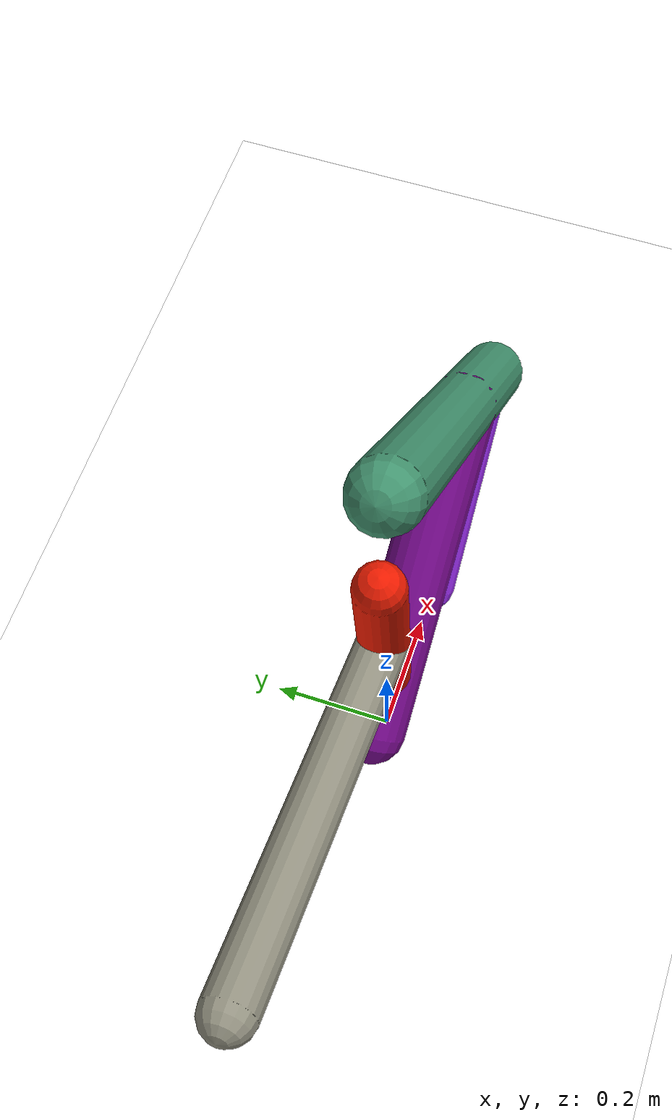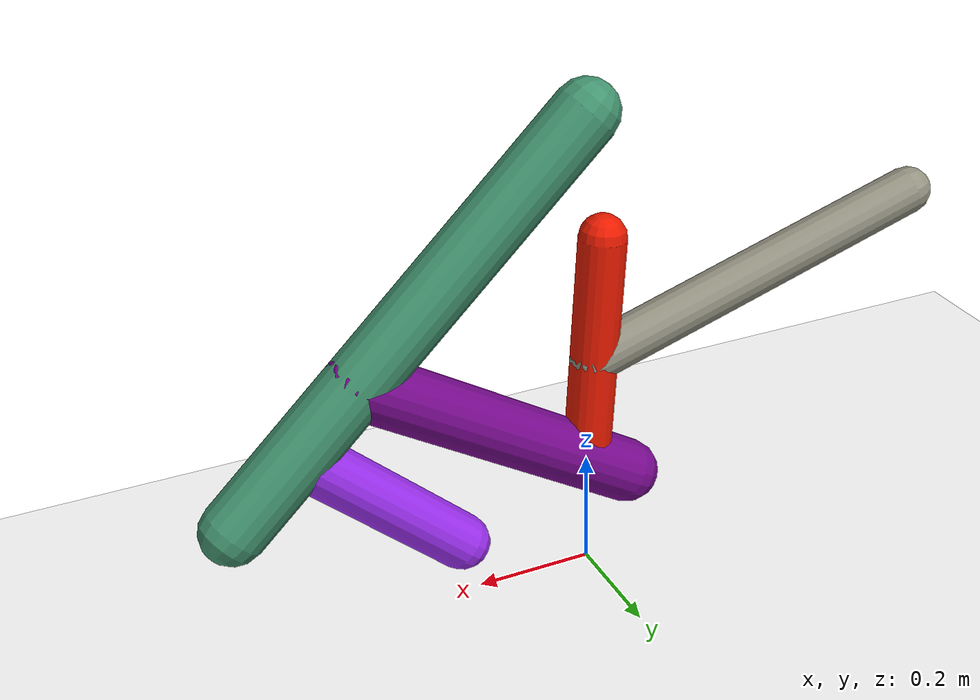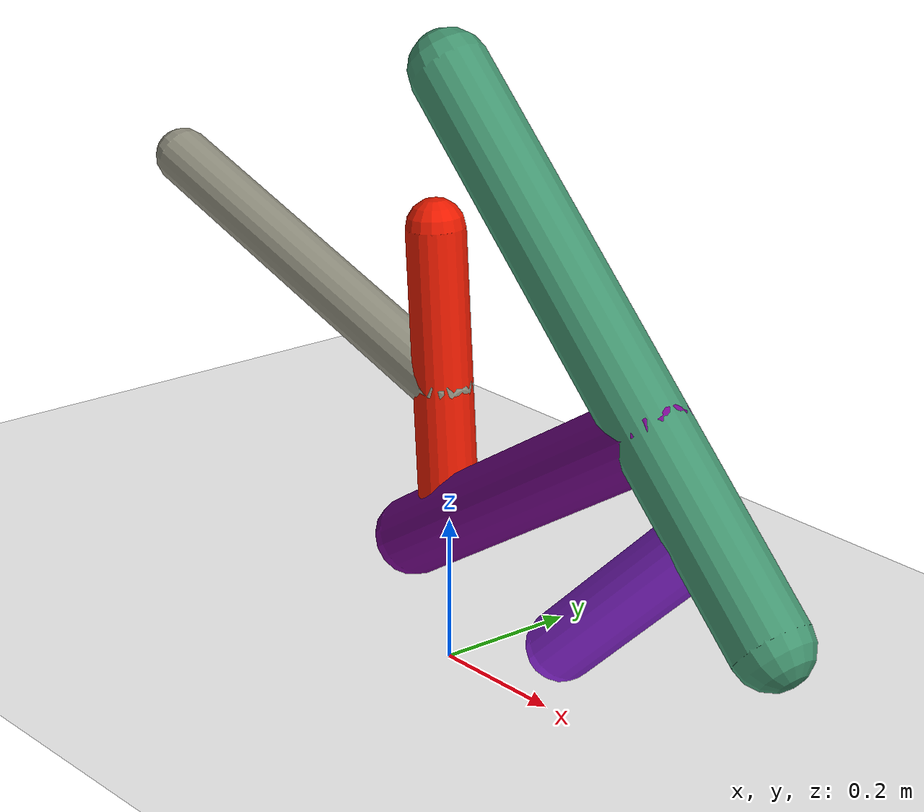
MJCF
<mujoco model="morphology">
  <option timestep="0.01"/>
  <default>
    <default class="/"/>
    <default class="0/"/>
    <default class="0/1/"/>
    <default class="0/2/"/>
    <default class="0/2/3/"/>
    <default class="0/2/3/4/"/>
  </default>
  <asset>
    <texture name="texplane" type="2d" builtin="checker" rgb1="0.10000000000000001 0.20000000000000001 0.29999999999999999" rgb2="0.20000000000000001 0.29999999999999999 0.40000000000000002" width="300" height="300"/>
    <material name="MatPlane" class="/" texture="texplane" texrepeat="20 20" specular="1" shininess="1" reflectance="0.5"/>
  </asset>
  <worldbody>
    <light name="//unnamed_light_0" class="/" directional="true" pos="0 0 1.5" dir="0 0 -1.3" cutoff="100" exponent="1" diffuse="1 1 1" specular="0.10000000000000001 0.10000000000000001 0.10000000000000001"/>
    <geom name="ground" class="/" type="plane" size="15 15 0.5" material="MatPlane" rgba="1 1 1 1"/>
    <site name="body" class="/" size="9.9999999999999995e-07 9.9999999999999995e-07 9.9999999999999995e-07" pos="0 0 0.81631270647048948"/>
    <body pos="0 0 0.81631270647048948" name="0/">
      <joint name="0/rootx/" class="/" type="slide" axis="1 0 0" limited="false" stiffness="0" armature="0" damping="0"/>
      <joint name="0/rootz/" class="/" type="slide" axis="0 0 1" limited="false" stiffness="0" armature="0" damping="0"/>
      <joint name="0/rooty/" class="/" type="hinge" axis="0 1 0" limited="false" stiffness="0" armature="0" damping="0"/>
      <geom name="0/geom" class="0/" type="capsule" contype="1" conaffinity="1" condim="3" size="0.054333583475095405" rgba="0.25850863879701069 0.57849214353567113 0.43517341792433606 1" friction="0.59999999999999998 0.10000000000000001 0.10000000000000001" fromto="0 0 0 0.6061226123117025 0 -0.58173029783024688"/>
      <site name="0/end0" class="0/" size="0.0050000000000000001" pos="0.6061226123117025 0 -0.58173029783024688"/>
      <site name="0/attach1" class="0/" size="9.9999999999999995e-07 9.9999999999999995e-07 9.9999999999999995e-07" pos="0.49404073992059255 0 -0.47415895882545511"/>
      <body pos="0.49404073992059255 0 -0.47415895882545511" name="0/1/">
        <joint name="0/1/joint/" class="0/" type="hinge" axis="0 1 0" limited="true" range="-49.129808682186365 49.129808682186365"/>
        <geom name="0/1/geom" class="0/1/" type="capsule" contype="1" conaffinity="1" condim="3" size="0.047263565412555934" rgba="0.62558750566505184 0.18692771071461689 0.96240394462488721 1" friction="0.59999999999999998 0.10000000000000001 0.10000000000000001" fromto="0 0 0 -0.26319285239741902 0 -0.24215375611822121"/>
        <site name="0/1/end1" class="0/1/" size="0.0050000000000000001" pos="-0.26319285239741902 0 -0.24215375611822121"/>
      </body>
      <site name="0/attach2" class="0/" size="9.9999999999999995e-07 9.9999999999999995e-07 9.9999999999999995e-07" pos="0.39058970414257199 0 -0.37487112393595728"/>
      <body pos="0.39058970414257199 0 -0.37487112393595728" name="0/2/">
        <geom name="0/2/geom" class="0/2/" type="capsule" contype="1" conaffinity="1" condim="3" size="0.054593920167780613" rgba="0.46996910158203009 0.037176516672498772 0.56251986186842307 1" friction="0.59999999999999998 0.10000000000000001 0.10000000000000001" fromto="0 0 0 -0.46661335008767341 0 -0.2879083503975392"/>
        <site name="0/2/end2" class="0/2/" size="0.0050000000000000001" pos="-0.46661335008767341 0 -0.2879083503975392"/>
        <site name="0/2/attach3" class="0/2/" size="9.9999999999999995e-07 9.9999999999999995e-07 9.9999999999999995e-07" pos="-0.39056686397048718 0 -0.24098637877496423"/>
        <body pos="-0.39056686397048718 0 -0.24098637877496423" name="0/2/3/">
          <joint name="0/2/3/joint/" class="0/2/" type="hinge" axis="0 1 0" limited="true" range="-40.329840209988269 40.329840209988269"/>
          <geom name="0/2/3/geom" class="0/2/3/" type="capsule" contype="1" conaffinity="1" condim="3" size="0.040207785499521191" rgba="0.92074539071110506 0.10545587806079471 0.0021583541811368567 1" friction="0.59999999999999998 0.10000000000000001 0.10000000000000001" fromto="0 0 0 -0.028494242269478831 0 0.40082092127006685"/>
          <site name="0/2/3/end3" class="0/2/3/" size="0.0050000000000000001" pos="-0.028494242269478831 0 0.40082092127006685"/>
          <site name="0/2/3/attach4" class="0/2/3/" size="9.9999999999999995e-07 9.9999999999999995e-07 9.9999999999999995e-07" pos="-0.013353587638115319 0 0.18784136278307342"/>
          <body pos="-0.013353587638115319 0 0.18784136278307342" name="0/2/3/4/">
            <joint name="0/2/3/4/joint/" class="0/2/3/" type="hinge" axis="0 1 0" limited="true" range="-48.590084727171828 48.590084727171828"/>
            <geom name="0/2/3/4/geom" class="0/2/3/4/" type="capsule" contype="1" conaffinity="1" condim="3" size="0.040760566688932916" rgba="0.57579351186992145 0.56965109150052795 0.50560105721561521 1" friction="0.59999999999999998 0.10000000000000001 0.10000000000000001" fromto="0 0 0 -0.6028586049489717 0 0.18372434837080631"/>
            <site name="0/2/3/4/end4" class="0/2/3/4/" size="0.0050000000000000001" pos="-0.6028586049489717 0 0.18372434837080631"/>
          </body>
        </body>
      </body>
      <camera name="0/side" class="0/" mode="trackcom" pos="0.40000000000000002 -4 0.20000000000000001" quat="0.70699999999999996 0.70699999999999996 0 0"/>
    </body>
  </worldbody>
  <actuator>
    <motor name="0/1/motor" class="0/1/" ctrllimited="true" ctrlrange="-1 1" gear="71" joint="0/1/joint/"/>
    <motor name="0/2/3/motor" class="0/2/3/" ctrllimited="true" ctrlrange="-1 1" gear="63" joint="0/2/3/joint/"/>
    <motor name="0/2/3/4/motor" class="0/2/3/4/" ctrllimited="true" ctrlrange="-1 1" gear="66" joint="0/2/3/4/joint/"/>
  </actuator>
  <sensor>
    <subtreelinvel name="velocity" body="0/"/>
  </sensor>
</mujoco>
